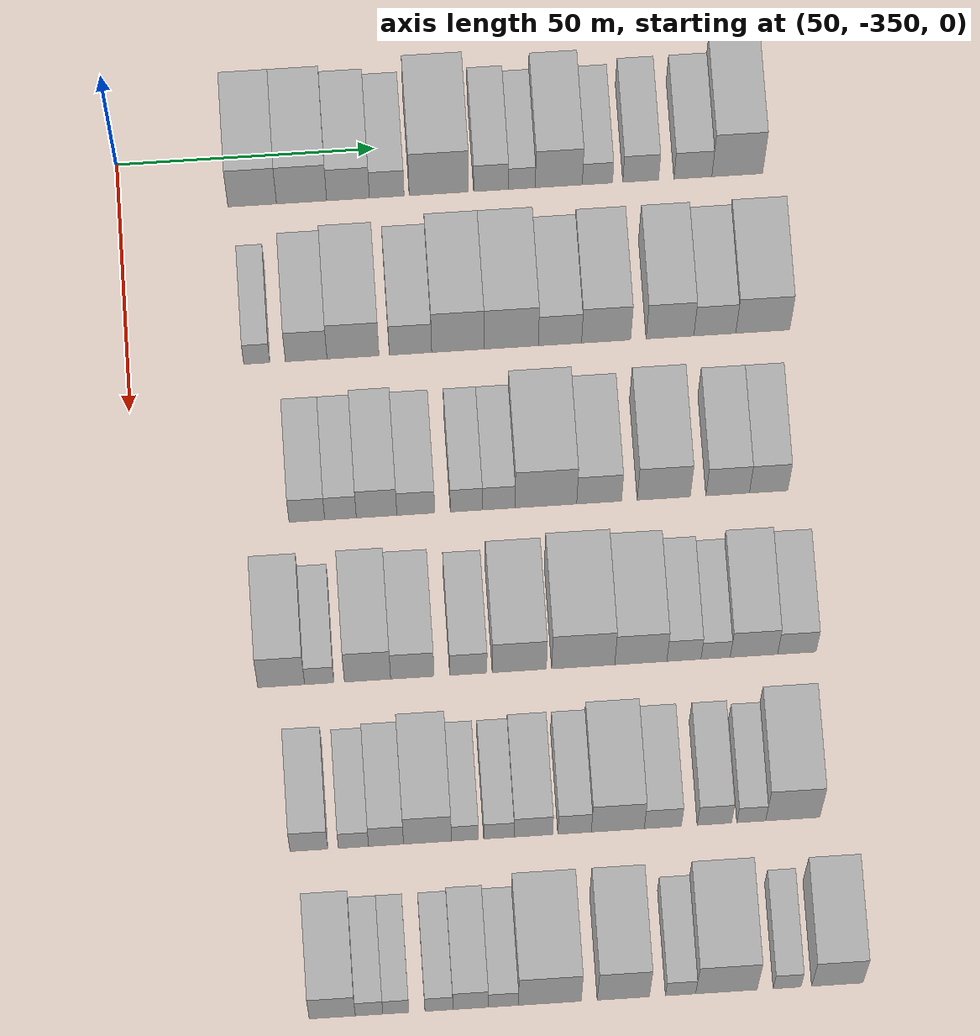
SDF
<sdf version="1.6">
 <world name="default">
  <model name="building_27">
   <static>1</static>
   <pose>50.0000 -324.2665 0 0.000000 0.000000 0.000000</pose>
   <link name="link">
    <pose>0 0 10.50 0 0 0</pose>
    <collision name="collision"><geometry><box><size>20.0000 9.4238 21.0000</size></box></geometry></collision>
    <visual name="visual">
     <cast_shadows>0</cast_shadows>
     <geometry><box><size>20.0000 9.4238 21.0000</size></box></geometry>
     <material>
      <script>
       <uri>model://HANNAS_wall/materials/scripts</uri>
       <uri>model://HANNAS_wall/materials/textures</uri>
       <name>vrc/HANNAS_wall</name>
      </script>
     </material>
    </visual>
   </link>
  </model>
  <model name="building_28">
   <static>1</static>
   <pose>50.0000 -314.6912 0 0.000000 0.000000 0.000000</pose>
   <link name="link">
    <pose>0 0 10.50 0 0 0</pose>
    <collision name="collision"><geometry><box><size>20.0000 9.7268 21.0000</size></box></geometry></collision>
    <visual name="visual">
     <cast_shadows>0</cast_shadows>
     <geometry><box><size>20.0000 9.7268 21.0000</size></box></geometry>
     <material>
      <script>
       <uri>model://HANNAS_wall/materials/scripts</uri>
       <uri>model://HANNAS_wall/materials/textures</uri>
       <name>vrc/HANNAS_wall</name>
      </script>
     </material>
    </visual>
   </link>
  </model>
  <model name="building_29">
   <static>1</static>
   <pose>50.0000 -305.6842 0 0.000000 0.000000 0.000000</pose>
   <link name="link">
    <pose>0 0 9.00 0 0 0</pose>
    <collision name="collision"><geometry><box><size>20.0000 8.2872 18.0000</size></box></geometry></collision>
    <visual name="visual">
     <cast_shadows>0</cast_shadows>
     <geometry><box><size>20.0000 8.2872 18.0000</size></box></geometry>
     <material>
      <script>
       <uri>model://HANNAS_wall/materials/scripts</uri>
       <uri>model://HANNAS_wall/materials/textures</uri>
       <name>vrc/HANNAS_wall</name>
      </script>
     </material>
    </visual>
   </link>
  </model>
  <model name="building_30">
   <static>1</static>
   <pose>50.0000 -298.1791 0 0.000000 0.000000 0.000000</pose>
   <link name="link">
    <pose>0 0 7.50 0 0 0</pose>
    <collision name="collision"><geometry><box><size>20.0000 6.7229 15.0000</size></box></geometry></collision>
    <visual name="visual">
     <cast_shadows>0</cast_shadows>
     <geometry><box><size>20.0000 6.7229 15.0000</size></box></geometry>
     <material>
      <script>
       <uri>model://HANNAS_wall/materials/scripts</uri>
       <uri>model://HANNAS_wall/materials/textures</uri>
       <name>vrc/HANNAS_wall</name>
      </script>
     </material>
    </visual>
   </link>
  </model>
  <model name="building_31">
   <static>1</static>
   <pose>50.0000 -288.0655 0 0.000000 0.000000 0.000000</pose>
   <link name="link">
    <pose>0 0 12.00 0 0 0</pose>
    <collision name="collision"><geometry><box><size>20.0000 11.5043 24.0000</size></box></geometry></collision>
    <visual name="visual">
     <cast_shadows>0</cast_shadows>
     <geometry><box><size>20.0000 11.5043 24.0000</size></box></geometry>
     <material>
      <script>
       <uri>model://HANNAS_wall/materials/scripts</uri>
       <uri>model://HANNAS_wall/materials/textures</uri>
       <name>vrc/HANNAS_wall</name>
      </script>
     </material>
    </visual>
   </link>
  </model>
  <model name="building_32">
   <static>1</static>
   <pose>50.0000 -277.9415 0 0.000000 0.000000 0.000000</pose>
   <link name="link">
    <pose>0 0 7.50 0 0 0</pose>
    <collision name="collision"><geometry><box><size>20.0000 6.7436 15.0000</size></box></geometry></collision>
    <visual name="visual">
     <cast_shadows>0</cast_shadows>
     <geometry><box><size>20.0000 6.7436 15.0000</size></box></geometry>
     <material>
      <script>
       <uri>model://HANNAS_wall/materials/scripts</uri>
       <uri>model://HANNAS_wall/materials/textures</uri>
       <name>vrc/HANNAS_wall</name>
      </script>
     </material>
    </visual>
   </link>
  </model>
  <model name="building_33">
   <static>1</static>
   <pose>50.0000 -271.9626 0 0.000000 0.000000 0.000000</pose>
   <link name="link">
    <pose>0 0 6.00 0 0 0</pose>
    <collision name="collision"><geometry><box><size>20.0000 5.2142 12.0000</size></box></geometry></collision>
    <visual name="visual">
     <cast_shadows>0</cast_shadows>
     <geometry><box><size>20.0000 5.2142 12.0000</size></box></geometry>
     <material>
      <script>
       <uri>model://HANNAS_wall/materials/scripts</uri>
       <uri>model://HANNAS_wall/materials/textures</uri>
       <name>vrc/HANNAS_wall</name>
      </script>
     </material>
    </visual>
   </link>
  </model>
  <model name="building_34">
   <static>1</static>
   <pose>50.0000 -264.7930 0 0.000000 0.000000 0.000000</pose>
   <link name="link">
    <pose>0 0 10.50 0 0 0</pose>
    <collision name="collision"><geometry><box><size>20.0000 9.1251 21.0000</size></box></geometry></collision>
    <visual name="visual">
     <cast_shadows>0</cast_shadows>
     <geometry><box><size>20.0000 9.1251 21.0000</size></box></geometry>
     <material>
      <script>
       <uri>model://HANNAS_wall/materials/scripts</uri>
       <uri>model://HANNAS_wall/materials/textures</uri>
       <name>vrc/HANNAS_wall</name>
      </script>
     </material>
    </visual>
   </link>
  </model>
  <model name="building_35">
   <static>1</static>
   <pose>50.0000 -257.2922 0 0.000000 0.000000 0.000000</pose>
   <link name="link">
    <pose>0 0 6.00 0 0 0</pose>
    <collision name="collision"><geometry><box><size>20.0000 5.8765 12.0000</size></box></geometry></collision>
    <visual name="visual">
     <cast_shadows>0</cast_shadows>
     <geometry><box><size>20.0000 5.8765 12.0000</size></box></geometry>
     <material>
      <script>
       <uri>model://HANNAS_wall/materials/scripts</uri>
       <uri>model://HANNAS_wall/materials/textures</uri>
       <name>vrc/HANNAS_wall</name>
      </script>
     </material>
    </visual>
   </link>
  </model>
  <model name="building_36">
   <static>1</static>
   <pose>50.0000 -248.8845 0 0.000000 0.000000 0.000000</pose>
   <link name="link">
    <pose>0 0 7.50 0 0 0</pose>
    <collision name="collision"><geometry><box><size>20.0000 6.9388 15.0000</size></box></geometry></collision>
    <visual name="visual">
     <cast_shadows>0</cast_shadows>
     <geometry><box><size>20.0000 6.9388 15.0000</size></box></geometry>
     <material>
      <script>
       <uri>model://HANNAS_wall/materials/scripts</uri>
       <uri>model://HANNAS_wall/materials/textures</uri>
       <name>vrc/HANNAS_wall</name>
      </script>
     </material>
    </visual>
   </link>
  </model>
  <model name="building_37">
   <static>1</static>
   <pose>50.0000 -238.7318 0 0.000000 0.000000 0.000000</pose>
   <link name="link">
    <pose>0 0 7.50 0 0 0</pose>
    <collision name="collision"><geometry><box><size>20.0000 7.3666 15.0000</size></box></geometry></collision>
    <visual name="visual">
     <cast_shadows>0</cast_shadows>
     <geometry><box><size>20.0000 7.3666 15.0000</size></box></geometry>
     <material>
      <script>
       <uri>model://HANNAS_wall/materials/scripts</uri>
       <uri>model://HANNAS_wall/materials/textures</uri>
       <name>vrc/HANNAS_wall</name>
      </script>
     </material>
    </visual>
   </link>
  </model>
  <model name="building_38">
   <static>1</static>
   <pose>50.0000 -230.1152 0 0.000000 0.000000 0.000000</pose>
   <link name="link">
    <pose>0 0 12.00 0 0 0</pose>
    <collision name="collision"><geometry><box><size>20.0000 9.8665 24.0000</size></box></geometry></collision>
    <visual name="visual">
     <cast_shadows>0</cast_shadows>
     <geometry><box><size>20.0000 9.8665 24.0000</size></box></geometry>
     <material>
      <script>
       <uri>model://HANNAS_wall/materials/scripts</uri>
       <uri>model://HANNAS_wall/materials/textures</uri>
       <name>vrc/HANNAS_wall</name>
      </script>
     </material>
    </visual>
   </link>
  </model>
  <model name="building_147">
   <static>1</static>
   <pose>82.0000 -325.1465 0 0.000000 0.000000 0.000000</pose>
   <link name="link">
    <pose>0 0 6.00 0 0 0</pose>
    <collision name="collision"><geometry><box><size>20.0000 5.0116 12.0000</size></box></geometry></collision>
    <visual name="visual">
     <cast_shadows>0</cast_shadows>
     <geometry><box><size>20.0000 5.0116 12.0000</size></box></geometry>
     <material>
      <script>
       <uri>model://HANNAS_wall/materials/scripts</uri>
       <uri>model://HANNAS_wall/materials/textures</uri>
       <name>vrc/HANNAS_wall</name>
      </script>
     </material>
    </visual>
   </link>
  </model>
  <model name="building_148">
   <static>1</static>
   <pose>82.0000 -315.6398 0 0.000000 0.000000 0.000000</pose>
   <link name="link">
    <pose>0 0 9.00 0 0 0</pose>
    <collision name="collision"><geometry><box><size>20.0000 8.0017 18.0000</size></box></geometry></collision>
    <visual name="visual">
     <cast_shadows>0</cast_shadows>
     <geometry><box><size>20.0000 8.0017 18.0000</size></box></geometry>
     <material>
      <script>
       <uri>model://HANNAS_wall/materials/scripts</uri>
       <uri>model://HANNAS_wall/materials/textures</uri>
       <name>vrc/HANNAS_wall</name>
      </script>
     </material>
    </visual>
   </link>
  </model>
  <model name="building_149">
   <static>1</static>
   <pose>82.0000 -306.6383 0 0.000000 0.000000 0.000000</pose>
   <link name="link">
    <pose>0 0 10.50 0 0 0</pose>
    <collision name="collision"><geometry><box><size>20.0000 10.0013 21.0000</size></box></geometry></collision>
    <visual name="visual">
     <cast_shadows>0</cast_shadows>
     <geometry><box><size>20.0000 10.0013 21.0000</size></box></geometry>
     <material>
      <script>
       <uri>model://HANNAS_wall/materials/scripts</uri>
       <uri>model://HANNAS_wall/materials/textures</uri>
       <name>vrc/HANNAS_wall</name>
      </script>
     </material>
    </visual>
   </link>
  </model>
  <model name="building_150">
   <static>1</static>
   <pose>82.0000 -295.5676 0 0.000000 0.000000 0.000000</pose>
   <link name="link">
    <pose>0 0 9.00 0 0 0</pose>
    <collision name="collision"><geometry><box><size>20.0000 8.1401 18.0000</size></box></geometry></collision>
    <visual name="visual">
     <cast_shadows>0</cast_shadows>
     <geometry><box><size>20.0000 8.1401 18.0000</size></box></geometry>
     <material>
      <script>
       <uri>model://HANNAS_wall/materials/scripts</uri>
       <uri>model://HANNAS_wall/materials/textures</uri>
       <name>vrc/HANNAS_wall</name>
      </script>
     </material>
    </visual>
   </link>
  </model>
  <model name="building_151">
   <static>1</static>
   <pose>82.0000 -286.4606 0 0.000000 0.000000 0.000000</pose>
   <link name="link">
    <pose>0 0 12.00 0 0 0</pose>
    <collision name="collision"><geometry><box><size>20.0000 10.0737 24.0000</size></box></geometry></collision>
    <visual name="visual">
     <cast_shadows>0</cast_shadows>
     <geometry><box><size>20.0000 10.0737 24.0000</size></box></geometry>
     <material>
      <script>
       <uri>model://HANNAS_wall/materials/scripts</uri>
       <uri>model://HANNAS_wall/materials/textures</uri>
       <name>vrc/HANNAS_wall</name>
      </script>
     </material>
    </visual>
   </link>
  </model>
  <model name="building_152">
   <static>1</static>
   <pose>82.0000 -276.1899 0 0.000000 0.000000 0.000000</pose>
   <link name="link">
    <pose>0 0 12.00 0 0 0</pose>
    <collision name="collision"><geometry><box><size>20.0000 10.4677 24.0000</size></box></geometry></collision>
    <visual name="visual">
     <cast_shadows>0</cast_shadows>
     <geometry><box><size>20.0000 10.4677 24.0000</size></box></geometry>
     <material>
      <script>
       <uri>model://HANNAS_wall/materials/scripts</uri>
       <uri>model://HANNAS_wall/materials/textures</uri>
       <name>vrc/HANNAS_wall</name>
      </script>
     </material>
    </visual>
   </link>
  </model>
  <model name="building_153">
   <static>1</static>
   <pose>82.0000 -266.7844 0 0.000000 0.000000 0.000000</pose>
   <link name="link">
    <pose>0 0 9.00 0 0 0</pose>
    <collision name="collision"><geometry><box><size>20.0000 8.3434 18.0000</size></box></geometry></collision>
    <visual name="visual">
     <cast_shadows>0</cast_shadows>
     <geometry><box><size>20.0000 8.3434 18.0000</size></box></geometry>
     <material>
      <script>
       <uri>model://HANNAS_wall/materials/scripts</uri>
       <uri>model://HANNAS_wall/materials/textures</uri>
       <name>vrc/HANNAS_wall</name>
      </script>
     </material>
    </visual>
   </link>
  </model>
  <model name="building_154">
   <static>1</static>
   <pose>82.0000 -257.8932 0 0.000000 0.000000 0.000000</pose>
   <link name="link">
    <pose>0 0 10.50 0 0 0</pose>
    <collision name="collision"><geometry><box><size>20.0000 9.4391 21.0000</size></box></geometry></collision>
    <visual name="visual">
     <cast_shadows>0</cast_shadows>
     <geometry><box><size>20.0000 9.4391 21.0000</size></box></geometry>
     <material>
      <script>
       <uri>model://HANNAS_wall/materials/scripts</uri>
       <uri>model://HANNAS_wall/materials/textures</uri>
       <name>vrc/HANNAS_wall</name>
      </script>
     </material>
    </visual>
   </link>
  </model>
  <model name="building_155">
   <static>1</static>
   <pose>82.0000 -245.5718 0 0.000000 0.000000 0.000000</pose>
   <link name="link">
    <pose>0 0 10.50 0 0 0</pose>
    <collision name="collision"><geometry><box><size>20.0000 9.2037 21.0000</size></box></geometry></collision>
    <visual name="visual">
     <cast_shadows>0</cast_shadows>
     <geometry><box><size>20.0000 9.2037 21.0000</size></box></geometry>
     <material>
      <script>
       <uri>model://HANNAS_wall/materials/scripts</uri>
       <uri>model://HANNAS_wall/materials/textures</uri>
       <name>vrc/HANNAS_wall</name>
      </script>
     </material>
    </visual>
   </link>
  </model>
  <model name="building_156">
   <static>1</static>
   <pose>82.0000 -236.9284 0 0.000000 0.000000 0.000000</pose>
   <link name="link">
    <pose>0 0 9.00 0 0 0</pose>
    <collision name="collision"><geometry><box><size>20.0000 8.0833 18.0000</size></box></geometry></collision>
    <visual name="visual">
     <cast_shadows>0</cast_shadows>
     <geometry><box><size>20.0000 8.0833 18.0000</size></box></geometry>
     <material>
      <script>
       <uri>model://HANNAS_wall/materials/scripts</uri>
       <uri>model://HANNAS_wall/materials/textures</uri>
       <name>vrc/HANNAS_wall</name>
      </script>
     </material>
    </visual>
   </link>
  </model>
  <model name="building_157">
   <static>1</static>
   <pose>82.0000 -227.6836 0 0.000000 0.000000 0.000000</pose>
   <link name="link">
    <pose>0 0 10.50 0 0 0</pose>
    <collision name="collision"><geometry><box><size>20.0000 10.4063 21.0000</size></box></geometry></collision>
    <visual name="visual">
     <cast_shadows>0</cast_shadows>
     <geometry><box><size>20.0000 10.4063 21.0000</size></box></geometry>
     <material>
      <script>
       <uri>model://HANNAS_wall/materials/scripts</uri>
       <uri>model://HANNAS_wall/materials/textures</uri>
       <name>vrc/HANNAS_wall</name>
      </script>
     </material>
    </visual>
   </link>
  </model>
  <model name="building_273">
   <static>1</static>
   <pose>114.0000 -317.3545 0 0.000000 0.000000 0.000000</pose>
   <link name="link">
    <pose>0 0 7.50 0 0 0</pose>
    <collision name="collision"><geometry><box><size>20.0000 6.8114 15.0000</size></box></geometry></collision>
    <visual name="visual">
     <cast_shadows>0</cast_shadows>
     <geometry><box><size>20.0000 6.8114 15.0000</size></box></geometry>
     <material>
      <script>
       <uri>model://HANNAS_wall/materials/scripts</uri>
       <uri>model://HANNAS_wall/materials/textures</uri>
       <name>vrc/HANNAS_wall</name>
      </script>
     </material>
    </visual>
   </link>
  </model>
  <model name="building_274">
   <static>1</static>
   <pose>114.0000 -310.9339 0 0.000000 0.000000 0.000000</pose>
   <link name="link">
    <pose>0 0 7.50 0 0 0</pose>
    <collision name="collision"><geometry><box><size>20.0000 6.0297 15.0000</size></box></geometry></collision>
    <visual name="visual">
     <cast_shadows>0</cast_shadows>
     <geometry><box><size>20.0000 6.0297 15.0000</size></box></geometry>
     <material>
      <script>
       <uri>model://HANNAS_wall/materials/scripts</uri>
       <uri>model://HANNAS_wall/materials/textures</uri>
       <name>vrc/HANNAS_wall</name>
      </script>
     </material>
    </visual>
   </link>
  </model>
  <model name="building_275">
   <static>1</static>
   <pose>114.0000 -304.0562 0 0.000000 0.000000 0.000000</pose>
   <link name="link">
    <pose>0 0 9.00 0 0 0</pose>
    <collision name="collision"><geometry><box><size>20.0000 7.7256 18.0000</size></box></geometry></collision>
    <visual name="visual">
     <cast_shadows>0</cast_shadows>
     <geometry><box><size>20.0000 7.7256 18.0000</size></box></geometry>
     <material>
      <script>
       <uri>model://HANNAS_wall/materials/scripts</uri>
       <uri>model://HANNAS_wall/materials/textures</uri>
       <name>vrc/HANNAS_wall</name>
      </script>
     </material>
    </visual>
   </link>
  </model>
  <model name="building_276">
   <static>1</static>
   <pose>114.0000 -296.5785 0 0.000000 0.000000 0.000000</pose>
   <link name="link">
    <pose>0 0 7.50 0 0 0</pose>
    <collision name="collision"><geometry><box><size>20.0000 7.2298 15.0000</size></box></geometry></collision>
    <visual name="visual">
     <cast_shadows>0</cast_shadows>
     <geometry><box><size>20.0000 7.2298 15.0000</size></box></geometry>
     <material>
      <script>
       <uri>model://HANNAS_wall/materials/scripts</uri>
       <uri>model://HANNAS_wall/materials/textures</uri>
       <name>vrc/HANNAS_wall</name>
      </script>
     </material>
    </visual>
   </link>
  </model>
  <model name="building_277">
   <static>1</static>
   <pose>114.0000 -286.8976 0 0.000000 0.000000 0.000000</pose>
   <link name="link">
    <pose>0 0 7.50 0 0 0</pose>
    <collision name="collision"><geometry><box><size>20.0000 6.1320 15.0000</size></box></geometry></collision>
    <visual name="visual">
     <cast_shadows>0</cast_shadows>
     <geometry><box><size>20.0000 6.1320 15.0000</size></box></geometry>
     <material>
      <script>
       <uri>model://HANNAS_wall/materials/scripts</uri>
       <uri>model://HANNAS_wall/materials/textures</uri>
       <name>vrc/HANNAS_wall</name>
      </script>
     </material>
    </visual>
   </link>
  </model>
  <model name="building_278">
   <static>1</static>
   <pose>114.0000 -280.7199 0 0.000000 0.000000 0.000000</pose>
   <link name="link">
    <pose>0 0 7.50 0 0 0</pose>
    <collision name="collision"><geometry><box><size>20.0000 6.2236 15.0000</size></box></geometry></collision>
    <visual name="visual">
     <cast_shadows>0</cast_shadows>
     <geometry><box><size>20.0000 6.2236 15.0000</size></box></geometry>
     <material>
      <script>
       <uri>model://HANNAS_wall/materials/scripts</uri>
       <uri>model://HANNAS_wall/materials/textures</uri>
       <name>vrc/HANNAS_wall</name>
      </script>
     </material>
    </visual>
   </link>
  </model>
  <model name="building_279">
   <static>1</static>
   <pose>114.0000 -271.7094 0 0.000000 0.000000 0.000000</pose>
   <link name="link">
    <pose>0 0 12.00 0 0 0</pose>
    <collision name="collision"><geometry><box><size>20.0000 11.7973 24.0000</size></box></geometry></collision>
    <visual name="visual">
     <cast_shadows>0</cast_shadows>
     <geometry><box><size>20.0000 11.7973 24.0000</size></box></geometry>
     <material>
      <script>
       <uri>model://HANNAS_wall/materials/scripts</uri>
       <uri>model://HANNAS_wall/materials/textures</uri>
       <name>vrc/HANNAS_wall</name>
      </script>
     </material>
    </visual>
   </link>
  </model>
  <model name="building_280">
   <static>1</static>
   <pose>114.0000 -261.5294 0 0.000000 0.000000 0.000000</pose>
   <link name="link">
    <pose>0 0 9.00 0 0 0</pose>
    <collision name="collision"><geometry><box><size>20.0000 8.5628 18.0000</size></box></geometry></collision>
    <visual name="visual">
     <cast_shadows>0</cast_shadows>
     <geometry><box><size>20.0000 8.5628 18.0000</size></box></geometry>
     <material>
      <script>
       <uri>model://HANNAS_wall/materials/scripts</uri>
       <uri>model://HANNAS_wall/materials/textures</uri>
       <name>vrc/HANNAS_wall</name>
      </script>
     </material>
    </visual>
   </link>
  </model>
  <model name="building_281">
   <static>1</static>
   <pose>114.0000 -249.1732 0 0.000000 0.000000 0.000000</pose>
   <link name="link">
    <pose>0 0 10.50 0 0 0</pose>
    <collision name="collision"><geometry><box><size>20.0000 10.1494 21.0000</size></box></geometry></collision>
    <visual name="visual">
     <cast_shadows>0</cast_shadows>
     <geometry><box><size>20.0000 10.1494 21.0000</size></box></geometry>
     <material>
      <script>
       <uri>model://HANNAS_wall/materials/scripts</uri>
       <uri>model://HANNAS_wall/materials/textures</uri>
       <name>vrc/HANNAS_wall</name>
      </script>
     </material>
    </visual>
   </link>
  </model>
  <model name="building_282">
   <static>1</static>
   <pose>114.0000 -236.9306 0 0.000000 0.000000 0.000000</pose>
   <link name="link">
    <pose>0 0 9.00 0 0 0</pose>
    <collision name="collision"><geometry><box><size>20.0000 8.3358 18.0000</size></box></geometry></collision>
    <visual name="visual">
     <cast_shadows>0</cast_shadows>
     <geometry><box><size>20.0000 8.3358 18.0000</size></box></geometry>
     <material>
      <script>
       <uri>model://HANNAS_wall/materials/scripts</uri>
       <uri>model://HANNAS_wall/materials/textures</uri>
       <name>vrc/HANNAS_wall</name>
      </script>
     </material>
    </visual>
   </link>
  </model>
  <model name="building_283">
   <static>1</static>
   <pose>114.0000 -229.0888 0 0.000000 0.000000 0.000000</pose>
   <link name="link">
    <pose>0 0 9.00 0 0 0</pose>
    <collision name="collision"><geometry><box><size>20.0000 7.3479 18.0000</size></box></geometry></collision>
    <visual name="visual">
     <cast_shadows>0</cast_shadows>
     <geometry><box><size>20.0000 7.3479 18.0000</size></box></geometry>
     <material>
      <script>
       <uri>model://HANNAS_wall/materials/scripts</uri>
       <uri>model://HANNAS_wall/materials/textures</uri>
       <name>vrc/HANNAS_wall</name>
      </script>
     </material>
    </visual>
   </link>
  </model>
  <model name="building_391">
   <static>1</static>
   <pose>146.0000 -324.0637 0 0.000000 0.000000 0.000000</pose>
   <link name="link">
    <pose>0 0 10.50 0 0 0</pose>
    <collision name="collision"><geometry><box><size>20.0000 8.8613 21.0000</size></box></geometry></collision>
    <visual name="visual">
     <cast_shadows>0</cast_shadows>
     <geometry><box><size>20.0000 8.8613 21.0000</size></box></geometry>
     <material>
      <script>
       <uri>model://HANNAS_wall/materials/scripts</uri>
       <uri>model://HANNAS_wall/materials/textures</uri>
       <name>vrc/HANNAS_wall</name>
      </script>
     </material>
    </visual>
   </link>
  </model>
  <model name="building_392">
   <static>1</static>
   <pose>146.0000 -316.8599 0 0.000000 0.000000 0.000000</pose>
   <link name="link">
    <pose>0 0 6.00 0 0 0</pose>
    <collision name="collision"><geometry><box><size>20.0000 5.5462 12.0000</size></box></geometry></collision>
    <visual name="visual">
     <cast_shadows>0</cast_shadows>
     <geometry><box><size>20.0000 5.5462 12.0000</size></box></geometry>
     <material>
      <script>
       <uri>model://HANNAS_wall/materials/scripts</uri>
       <uri>model://HANNAS_wall/materials/textures</uri>
       <name>vrc/HANNAS_wall</name>
      </script>
     </material>
    </visual>
   </link>
  </model>
  <model name="building_393">
   <static>1</static>
   <pose>146.0000 -307.7128 0 0.000000 0.000000 0.000000</pose>
   <link name="link">
    <pose>0 0 10.50 0 0 0</pose>
    <collision name="collision"><geometry><box><size>20.0000 8.7479 21.0000</size></box></geometry></collision>
    <visual name="visual">
     <cast_shadows>0</cast_shadows>
     <geometry><box><size>20.0000 8.7479 21.0000</size></box></geometry>
     <material>
      <script>
       <uri>model://HANNAS_wall/materials/scripts</uri>
       <uri>model://HANNAS_wall/materials/textures</uri>
       <name>vrc/HANNAS_wall</name>
      </script>
     </material>
    </visual>
   </link>
  </model>
  <model name="building_394">
   <static>1</static>
   <pose>146.0000 -299.2348 0 0.000000 0.000000 0.000000</pose>
   <link name="link">
    <pose>0 0 9.00 0 0 0</pose>
    <collision name="collision"><geometry><box><size>20.0000 8.2081 18.0000</size></box></geometry></collision>
    <visual name="visual">
     <cast_shadows>0</cast_shadows>
     <geometry><box><size>20.0000 8.2081 18.0000</size></box></geometry>
     <material>
      <script>
       <uri>model://HANNAS_wall/materials/scripts</uri>
       <uri>model://HANNAS_wall/materials/textures</uri>
       <name>vrc/HANNAS_wall</name>
      </script>
     </material>
    </visual>
   </link>
  </model>
  <model name="building_395">
   <static>1</static>
   <pose>146.0000 -288.6034 0 0.000000 0.000000 0.000000</pose>
   <link name="link">
    <pose>0 0 7.50 0 0 0</pose>
    <collision name="collision"><geometry><box><size>20.0000 7.0547 15.0000</size></box></geometry></collision>
    <visual name="visual">
     <cast_shadows>0</cast_shadows>
     <geometry><box><size>20.0000 7.0547 15.0000</size></box></geometry>
     <material>
      <script>
       <uri>model://HANNAS_wall/materials/scripts</uri>
       <uri>model://HANNAS_wall/materials/textures</uri>
       <name>vrc/HANNAS_wall</name>
      </script>
     </material>
    </visual>
   </link>
  </model>
  <model name="building_396">
   <static>1</static>
   <pose>146.0000 -278.9494 0 0.000000 0.000000 0.000000</pose>
   <link name="link">
    <pose>0 0 10.50 0 0 0</pose>
    <collision name="collision"><geometry><box><size>20.0000 10.2532 21.0000</size></box></geometry></collision>
    <visual name="visual">
     <cast_shadows>0</cast_shadows>
     <geometry><box><size>20.0000 10.2532 21.0000</size></box></geometry>
     <material>
      <script>
       <uri>model://HANNAS_wall/materials/scripts</uri>
       <uri>model://HANNAS_wall/materials/textures</uri>
       <name>vrc/HANNAS_wall</name>
      </script>
     </material>
    </visual>
   </link>
  </model>
  <model name="building_397">
   <static>1</static>
   <pose>146.0000 -266.8339 0 0.000000 0.000000 0.000000</pose>
   <link name="link">
    <pose>0 0 12.00 0 0 0</pose>
    <collision name="collision"><geometry><box><size>20.0000 11.9777 24.0000</size></box></geometry></collision>
    <visual name="visual">
     <cast_shadows>0</cast_shadows>
     <geometry><box><size>20.0000 11.9777 24.0000</size></box></geometry>
     <material>
      <script>
       <uri>model://HANNAS_wall/materials/scripts</uri>
       <uri>model://HANNAS_wall/materials/textures</uri>
       <name>vrc/HANNAS_wall</name>
      </script>
     </material>
    </visual>
   </link>
  </model>
  <model name="building_398">
   <static>1</static>
   <pose>146.0000 -255.9065 0 0.000000 0.000000 0.000000</pose>
   <link name="link">
    <pose>0 0 10.50 0 0 0</pose>
    <collision name="collision"><geometry><box><size>20.0000 9.8773 21.0000</size></box></geometry></collision>
    <visual name="visual">
     <cast_shadows>0</cast_shadows>
     <geometry><box><size>20.0000 9.8773 21.0000</size></box></geometry>
     <material>
      <script>
       <uri>model://HANNAS_wall/materials/scripts</uri>
       <uri>model://HANNAS_wall/materials/textures</uri>
       <name>vrc/HANNAS_wall</name>
      </script>
     </material>
    </visual>
   </link>
  </model>
  <model name="building_399">
   <static>1</static>
   <pose>146.0000 -247.7172 0 0.000000 0.000000 0.000000</pose>
   <link name="link">
    <pose>0 0 7.50 0 0 0</pose>
    <collision name="collision"><geometry><box><size>20.0000 6.5012 15.0000</size></box></geometry></collision>
    <visual name="visual">
     <cast_shadows>0</cast_shadows>
     <geometry><box><size>20.0000 6.5012 15.0000</size></box></geometry>
     <material>
      <script>
       <uri>model://HANNAS_wall/materials/scripts</uri>
       <uri>model://HANNAS_wall/materials/textures</uri>
       <name>vrc/HANNAS_wall</name>
      </script>
     </material>
    </visual>
   </link>
  </model>
  <model name="building_400">
   <static>1</static>
   <pose>146.0000 -241.6901 0 0.000000 0.000000 0.000000</pose>
   <link name="link">
    <pose>0 0 6.00 0 0 0</pose>
    <collision name="collision"><geometry><box><size>20.0000 5.5531 12.0000</size></box></geometry></collision>
    <visual name="visual">
     <cast_shadows>0</cast_shadows>
     <geometry><box><size>20.0000 5.5531 12.0000</size></box></geometry>
     <material>
      <script>
       <uri>model://HANNAS_wall/materials/scripts</uri>
       <uri>model://HANNAS_wall/materials/textures</uri>
       <name>vrc/HANNAS_wall</name>
      </script>
     </material>
    </visual>
   </link>
  </model>
  <model name="building_401">
   <static>1</static>
   <pose>146.0000 -234.4210 0 0.000000 0.000000 0.000000</pose>
   <link name="link">
    <pose>0 0 9.00 0 0 0</pose>
    <collision name="collision"><geometry><box><size>20.0000 8.9851 18.0000</size></box></geometry></collision>
    <visual name="visual">
     <cast_shadows>0</cast_shadows>
     <geometry><box><size>20.0000 8.9851 18.0000</size></box></geometry>
     <material>
      <script>
       <uri>model://HANNAS_wall/materials/scripts</uri>
       <uri>model://HANNAS_wall/materials/textures</uri>
       <name>vrc/HANNAS_wall</name>
      </script>
     </material>
    </visual>
   </link>
  </model>
  <model name="building_402">
   <static>1</static>
   <pose>146.0000 -226.2702 0 0.000000 0.000000 0.000000</pose>
   <link name="link">
    <pose>0 0 7.50 0 0 0</pose>
    <collision name="collision"><geometry><box><size>20.0000 7.3166 15.0000</size></box></geometry></collision>
    <visual name="visual">
     <cast_shadows>0</cast_shadows>
     <geometry><box><size>20.0000 7.3166 15.0000</size></box></geometry>
     <material>
      <script>
       <uri>model://HANNAS_wall/materials/scripts</uri>
       <uri>model://HANNAS_wall/materials/textures</uri>
       <name>vrc/HANNAS_wall</name>
      </script>
     </material>
    </visual>
   </link>
  </model>
  <model name="building_507">
   <static>1</static>
   <pose>178.0000 -320.6570 0 0.000000 0.000000 0.000000</pose>
   <link name="link">
    <pose>0 0 7.50 0 0 0</pose>
    <collision name="collision"><geometry><box><size>20.0000 7.0921 15.0000</size></box></geometry></collision>
    <visual name="visual">
     <cast_shadows>0</cast_shadows>
     <geometry><box><size>20.0000 7.0921 15.0000</size></box></geometry>
     <material>
      <script>
       <uri>model://HANNAS_wall/materials/scripts</uri>
       <uri>model://HANNAS_wall/materials/textures</uri>
       <name>vrc/HANNAS_wall</name>
      </script>
     </material>
    </visual>
   </link>
  </model>
  <model name="building_508">
   <static>1</static>
   <pose>178.0000 -312.2766 0 0.000000 0.000000 0.000000</pose>
   <link name="link">
    <pose>0 0 6.00 0 0 0</pose>
    <collision name="collision"><geometry><box><size>20.0000 5.6686 12.0000</size></box></geometry></collision>
    <visual name="visual">
     <cast_shadows>0</cast_shadows>
     <geometry><box><size>20.0000 5.6686 12.0000</size></box></geometry>
     <material>
      <script>
       <uri>model://HANNAS_wall/materials/scripts</uri>
       <uri>model://HANNAS_wall/materials/textures</uri>
       <name>vrc/HANNAS_wall</name>
      </script>
     </material>
    </visual>
   </link>
  </model>
  <model name="building_509">
   <static>1</static>
   <pose>178.0000 -306.1624 0 0.000000 0.000000 0.000000</pose>
   <link name="link">
    <pose>0 0 7.50 0 0 0</pose>
    <collision name="collision"><geometry><box><size>20.0000 6.5598 15.0000</size></box></geometry></collision>
    <visual name="visual">
     <cast_shadows>0</cast_shadows>
     <geometry><box><size>20.0000 6.5598 15.0000</size></box></geometry>
     <material>
      <script>
       <uri>model://HANNAS_wall/materials/scripts</uri>
       <uri>model://HANNAS_wall/materials/textures</uri>
       <name>vrc/HANNAS_wall</name>
      </script>
     </material>
    </visual>
   </link>
  </model>
  <model name="building_510">
   <static>1</static>
   <pose>178.0000 -298.3930 0 0.000000 0.000000 0.000000</pose>
   <link name="link">
    <pose>0 0 10.50 0 0 0</pose>
    <collision name="collision"><geometry><box><size>20.0000 8.9790 21.0000</size></box></geometry></collision>
    <visual name="visual">
     <cast_shadows>0</cast_shadows>
     <geometry><box><size>20.0000 8.9790 21.0000</size></box></geometry>
     <material>
      <script>
       <uri>model://HANNAS_wall/materials/scripts</uri>
       <uri>model://HANNAS_wall/materials/textures</uri>
       <name>vrc/HANNAS_wall</name>
      </script>
     </material>
    </visual>
   </link>
  </model>
  <model name="building_511">
   <static>1</static>
   <pose>178.0000 -291.3516 0 0.000000 0.000000 0.000000</pose>
   <link name="link">
    <pose>0 0 6.00 0 0 0</pose>
    <collision name="collision"><geometry><box><size>20.0000 5.1040 12.0000</size></box></geometry></collision>
    <visual name="visual">
     <cast_shadows>0</cast_shadows>
     <geometry><box><size>20.0000 5.1040 12.0000</size></box></geometry>
     <material>
      <script>
       <uri>model://HANNAS_wall/materials/scripts</uri>
       <uri>model://HANNAS_wall/materials/textures</uri>
       <name>vrc/HANNAS_wall</name>
      </script>
     </material>
    </visual>
   </link>
  </model>
  <model name="building_512">
   <static>1</static>
   <pose>178.0000 -284.9552 0 0.000000 0.000000 0.000000</pose>
   <link name="link">
    <pose>0 0 6.00 0 0 0</pose>
    <collision name="collision"><geometry><box><size>20.0000 5.6887 12.0000</size></box></geometry></collision>
    <visual name="visual">
     <cast_shadows>0</cast_shadows>
     <geometry><box><size>20.0000 5.6887 12.0000</size></box></geometry>
     <material>
      <script>
       <uri>model://HANNAS_wall/materials/scripts</uri>
       <uri>model://HANNAS_wall/materials/textures</uri>
       <name>vrc/HANNAS_wall</name>
      </script>
     </material>
    </visual>
   </link>
  </model>
  <model name="building_513">
   <static>1</static>
   <pose>178.0000 -278.4836 0 0.000000 0.000000 0.000000</pose>
   <link name="link">
    <pose>0 0 7.50 0 0 0</pose>
    <collision name="collision"><geometry><box><size>20.0000 7.2546 15.0000</size></box></geometry></collision>
    <visual name="visual">
     <cast_shadows>0</cast_shadows>
     <geometry><box><size>20.0000 7.2546 15.0000</size></box></geometry>
     <material>
      <script>
       <uri>model://HANNAS_wall/materials/scripts</uri>
       <uri>model://HANNAS_wall/materials/textures</uri>
       <name>vrc/HANNAS_wall</name>
      </script>
     </material>
    </visual>
   </link>
  </model>
  <model name="building_514">
   <static>1</static>
   <pose>178.0000 -270.7150 0 0.000000 0.000000 0.000000</pose>
   <link name="link">
    <pose>0 0 7.50 0 0 0</pose>
    <collision name="collision"><geometry><box><size>20.0000 6.2827 15.0000</size></box></geometry></collision>
    <visual name="visual">
     <cast_shadows>0</cast_shadows>
     <geometry><box><size>20.0000 6.2827 15.0000</size></box></geometry>
     <material>
      <script>
       <uri>model://HANNAS_wall/materials/scripts</uri>
       <uri>model://HANNAS_wall/materials/textures</uri>
       <name>vrc/HANNAS_wall</name>
      </script>
     </material>
    </visual>
   </link>
  </model>
  <model name="building_515">
   <static>1</static>
   <pose>178.0000 -262.5838 0 0.000000 0.000000 0.000000</pose>
   <link name="link">
    <pose>0 0 10.50 0 0 0</pose>
    <collision name="collision"><geometry><box><size>20.0000 9.9797 21.0000</size></box></geometry></collision>
    <visual name="visual">
     <cast_shadows>0</cast_shadows>
     <geometry><box><size>20.0000 9.9797 21.0000</size></box></geometry>
     <material>
      <script>
       <uri>model://HANNAS_wall/materials/scripts</uri>
       <uri>model://HANNAS_wall/materials/textures</uri>
       <name>vrc/HANNAS_wall</name>
      </script>
     </material>
    </visual>
   </link>
  </model>
  <model name="building_516">
   <static>1</static>
   <pose>178.0000 -254.1086 0 0.000000 0.000000 0.000000</pose>
   <link name="link">
    <pose>0 0 7.50 0 0 0</pose>
    <collision name="collision"><geometry><box><size>20.0000 6.9706 15.0000</size></box></geometry></collision>
    <visual name="visual">
     <cast_shadows>0</cast_shadows>
     <geometry><box><size>20.0000 6.9706 15.0000</size></box></geometry>
     <material>
      <script>
       <uri>model://HANNAS_wall/materials/scripts</uri>
       <uri>model://HANNAS_wall/materials/textures</uri>
       <name>vrc/HANNAS_wall</name>
      </script>
     </material>
    </visual>
   </link>
  </model>
  <model name="building_517">
   <static>1</static>
   <pose>178.0000 -244.3906 0 0.000000 0.000000 0.000000</pose>
   <link name="link">
    <pose>0 0 7.50 0 0 0</pose>
    <collision name="collision"><geometry><box><size>20.0000 6.4654 15.0000</size></box></geometry></collision>
    <visual name="visual">
     <cast_shadows>0</cast_shadows>
     <geometry><box><size>20.0000 6.4654 15.0000</size></box></geometry>
     <material>
      <script>
       <uri>model://HANNAS_wall/materials/scripts</uri>
       <uri>model://HANNAS_wall/materials/textures</uri>
       <name>vrc/HANNAS_wall</name>
      </script>
     </material>
    </visual>
   </link>
  </model>
  <model name="building_518">
   <static>1</static>
   <pose>178.0000 -237.4492 0 0.000000 0.000000 0.000000</pose>
   <link name="link">
    <pose>0 0 6.00 0 0 0</pose>
    <collision name="collision"><geometry><box><size>20.0000 5.4176 12.0000</size></box></geometry></collision>
    <visual name="visual">
     <cast_shadows>0</cast_shadows>
     <geometry><box><size>20.0000 5.4176 12.0000</size></box></geometry>
     <material>
      <script>
       <uri>model://HANNAS_wall/materials/scripts</uri>
       <uri>model://HANNAS_wall/materials/textures</uri>
       <name>vrc/HANNAS_wall</name>
      </script>
     </material>
    </visual>
   </link>
  </model>
  <model name="building_519">
   <static>1</static>
   <pose>178.0000 -229.6336 0 0.000000 0.000000 0.000000</pose>
   <link name="link">
    <pose>0 0 12.00 0 0 0</pose>
    <collision name="collision"><geometry><box><size>20.0000 10.2136 24.0000</size></box></geometry></collision>
    <visual name="visual">
     <cast_shadows>0</cast_shadows>
     <geometry><box><size>20.0000 10.2136 24.0000</size></box></geometry>
     <material>
      <script>
       <uri>model://HANNAS_wall/materials/scripts</uri>
       <uri>model://HANNAS_wall/materials/textures</uri>
       <name>vrc/HANNAS_wall</name>
      </script>
     </material>
    </visual>
   </link>
  </model>
  <model name="building_627">
   <static>1</static>
   <pose>210.0000 -318.1522 0 0.000000 0.000000 0.000000</pose>
   <link name="link">
    <pose>0 0 9.00 0 0 0</pose>
    <collision name="collision"><geometry><box><size>20.0000 8.5921 18.0000</size></box></geometry></collision>
    <visual name="visual">
     <cast_shadows>0</cast_shadows>
     <geometry><box><size>20.0000 8.5921 18.0000</size></box></geometry>
     <material>
      <script>
       <uri>model://HANNAS_wall/materials/scripts</uri>
       <uri>model://HANNAS_wall/materials/textures</uri>
       <name>vrc/HANNAS_wall</name>
      </script>
     </material>
    </visual>
   </link>
  </model>
  <model name="building_628">
   <static>1</static>
   <pose>210.0000 -311.2867 0 0.000000 0.000000 0.000000</pose>
   <link name="link">
    <pose>0 0 6.00 0 0 0</pose>
    <collision name="collision"><geometry><box><size>20.0000 5.1389 12.0000</size></box></geometry></collision>
    <visual name="visual">
     <cast_shadows>0</cast_shadows>
     <geometry><box><size>20.0000 5.1389 12.0000</size></box></geometry>
     <material>
      <script>
       <uri>model://HANNAS_wall/materials/scripts</uri>
       <uri>model://HANNAS_wall/materials/textures</uri>
       <name>vrc/HANNAS_wall</name>
      </script>
     </material>
    </visual>
   </link>
  </model>
  <model name="building_629">
   <static>1</static>
   <pose>210.0000 -306.2950 0 0.000000 0.000000 0.000000</pose>
   <link name="link">
    <pose>0 0 6.00 0 0 0</pose>
    <collision name="collision"><geometry><box><size>20.0000 4.8445 12.0000</size></box></geometry></collision>
    <visual name="visual">
     <cast_shadows>0</cast_shadows>
     <geometry><box><size>20.0000 4.8445 12.0000</size></box></geometry>
     <material>
      <script>
       <uri>model://HANNAS_wall/materials/scripts</uri>
       <uri>model://HANNAS_wall/materials/textures</uri>
       <name>vrc/HANNAS_wall</name>
      </script>
     </material>
    </visual>
   </link>
  </model>
  <model name="building_630">
   <static>1</static>
   <pose>210.0000 -298.2642 0 0.000000 0.000000 0.000000</pose>
   <link name="link">
    <pose>0 0 6.00 0 0 0</pose>
    <collision name="collision"><geometry><box><size>20.0000 5.2171 12.0000</size></box></geometry></collision>
    <visual name="visual">
     <cast_shadows>0</cast_shadows>
     <geometry><box><size>20.0000 5.2171 12.0000</size></box></geometry>
     <material>
      <script>
       <uri>model://HANNAS_wall/materials/scripts</uri>
       <uri>model://HANNAS_wall/materials/textures</uri>
       <name>vrc/HANNAS_wall</name>
      </script>
     </material>
    </visual>
   </link>
  </model>
  <model name="building_631">
   <static>1</static>
   <pose>210.0000 -292.3558 0 0.000000 0.000000 0.000000</pose>
   <link name="link">
    <pose>0 0 7.50 0 0 0</pose>
    <collision name="collision"><geometry><box><size>20.0000 6.5996 15.0000</size></box></geometry></collision>
    <visual name="visual">
     <cast_shadows>0</cast_shadows>
     <geometry><box><size>20.0000 6.5996 15.0000</size></box></geometry>
     <material>
      <script>
       <uri>model://HANNAS_wall/materials/scripts</uri>
       <uri>model://HANNAS_wall/materials/textures</uri>
       <name>vrc/HANNAS_wall</name>
      </script>
     </material>
    </visual>
   </link>
  </model>
  <model name="building_632">
   <static>1</static>
   <pose>210.0000 -286.2524 0 0.000000 0.000000 0.000000</pose>
   <link name="link">
    <pose>0 0 6.00 0 0 0</pose>
    <collision name="collision"><geometry><box><size>20.0000 5.6071 12.0000</size></box></geometry></collision>
    <visual name="visual">
     <cast_shadows>0</cast_shadows>
     <geometry><box><size>20.0000 5.6071 12.0000</size></box></geometry>
     <material>
      <script>
       <uri>model://HANNAS_wall/materials/scripts</uri>
       <uri>model://HANNAS_wall/materials/textures</uri>
       <name>vrc/HANNAS_wall</name>
      </script>
     </material>
    </visual>
   </link>
  </model>
  <model name="building_633">
   <static>1</static>
   <pose>210.0000 -277.5885 0 0.000000 0.000000 0.000000</pose>
   <link name="link">
    <pose>0 0 12.00 0 0 0</pose>
    <collision name="collision"><geometry><box><size>20.0000 11.7208 24.0000</size></box></geometry></collision>
    <visual name="visual">
     <cast_shadows>0</cast_shadows>
     <geometry><box><size>20.0000 11.7208 24.0000</size></box></geometry>
     <material>
      <script>
       <uri>model://HANNAS_wall/materials/scripts</uri>
       <uri>model://HANNAS_wall/materials/textures</uri>
       <name>vrc/HANNAS_wall</name>
      </script>
     </material>
    </visual>
   </link>
  </model>
  <model name="building_634">
   <static>1</static>
   <pose>210.0000 -263.8603 0 0.000000 0.000000 0.000000</pose>
   <link name="link">
    <pose>0 0 12.00 0 0 0</pose>
    <collision name="collision"><geometry><box><size>20.0000 9.7356 24.0000</size></box></geometry></collision>
    <visual name="visual">
     <cast_shadows>0</cast_shadows>
     <geometry><box><size>20.0000 9.7356 24.0000</size></box></geometry>
     <material>
      <script>
       <uri>model://HANNAS_wall/materials/scripts</uri>
       <uri>model://HANNAS_wall/materials/textures</uri>
       <name>vrc/HANNAS_wall</name>
      </script>
     </material>
    </visual>
   </link>
  </model>
  <model name="building_635">
   <static>1</static>
   <pose>210.0000 -253.1697 0 0.000000 0.000000 0.000000</pose>
   <link name="link">
    <pose>0 0 6.00 0 0 0</pose>
    <collision name="collision"><geometry><box><size>20.0000 5.6456 12.0000</size></box></geometry></collision>
    <visual name="visual">
     <cast_shadows>0</cast_shadows>
     <geometry><box><size>20.0000 5.6456 12.0000</size></box></geometry>
     <material>
      <script>
       <uri>model://HANNAS_wall/materials/scripts</uri>
       <uri>model://HANNAS_wall/materials/textures</uri>
       <name>vrc/HANNAS_wall</name>
      </script>
     </material>
    </visual>
   </link>
  </model>
  <model name="building_636">
   <static>1</static>
   <pose>210.0000 -244.6054 0 0.000000 0.000000 0.000000</pose>
   <link name="link">
    <pose>0 0 12.00 0 0 0</pose>
    <collision name="collision"><geometry><box><size>20.0000 11.4829 24.0000</size></box></geometry></collision>
    <visual name="visual">
     <cast_shadows>0</cast_shadows>
     <geometry><box><size>20.0000 11.4829 24.0000</size></box></geometry>
     <material>
      <script>
       <uri>model://HANNAS_wall/materials/scripts</uri>
       <uri>model://HANNAS_wall/materials/textures</uri>
       <name>vrc/HANNAS_wall</name>
      </script>
     </material>
    </visual>
   </link>
  </model>
  <model name="building_637">
   <static>1</static>
   <pose>210.0000 -233.2648 0 0.000000 0.000000 0.000000</pose>
   <link name="link">
    <pose>0 0 6.00 0 0 0</pose>
    <collision name="collision"><geometry><box><size>20.0000 5.1983 12.0000</size></box></geometry></collision>
    <visual name="visual">
     <cast_shadows>0</cast_shadows>
     <geometry><box><size>20.0000 5.1983 12.0000</size></box></geometry>
     <material>
      <script>
       <uri>model://HANNAS_wall/materials/scripts</uri>
       <uri>model://HANNAS_wall/materials/textures</uri>
       <name>vrc/HANNAS_wall</name>
      </script>
     </material>
    </visual>
   </link>
  </model>
  <model name="building_638">
   <static>1</static>
   <pose>210.0000 -223.8738 0 0.000000 0.000000 0.000000</pose>
   <link name="link">
    <pose>0 0 10.50 0 0 0</pose>
    <collision name="collision"><geometry><box><size>20.0000 9.5836 21.0000</size></box></geometry></collision>
    <visual name="visual">
     <cast_shadows>0</cast_shadows>
     <geometry><box><size>20.0000 9.5836 21.0000</size></box></geometry>
     <material>
      <script>
       <uri>model://HANNAS_wall/materials/scripts</uri>
       <uri>model://HANNAS_wall/materials/textures</uri>
       <name>vrc/HANNAS_wall</name>
      </script>
     </material>
    </visual>
   </link>
  </model>
 </world>
</sdf>
